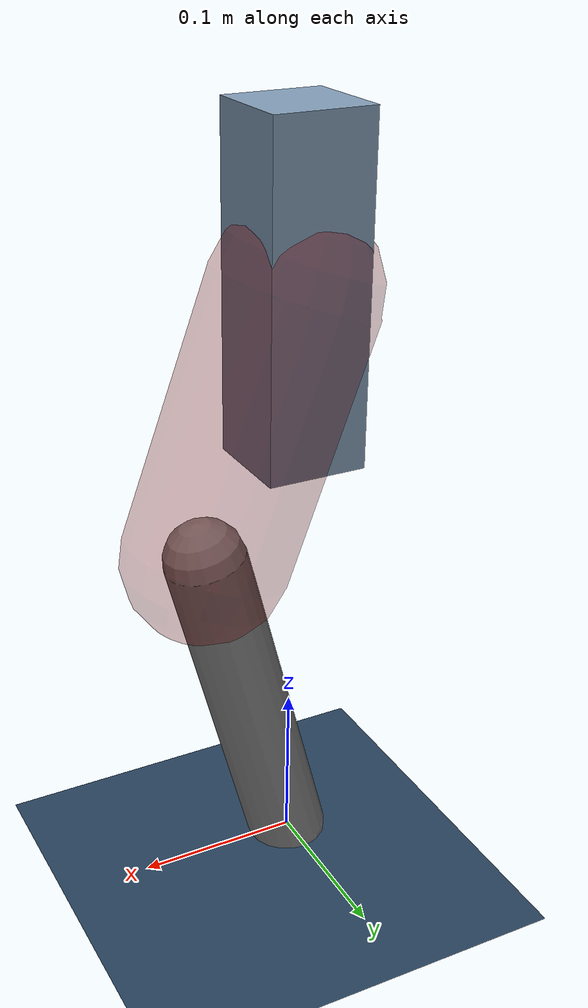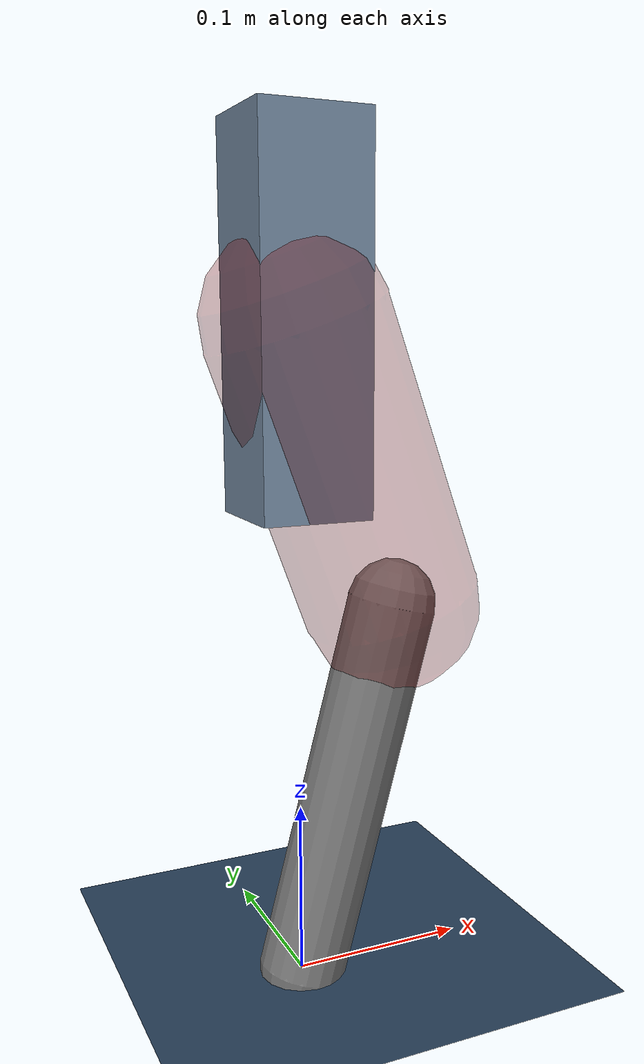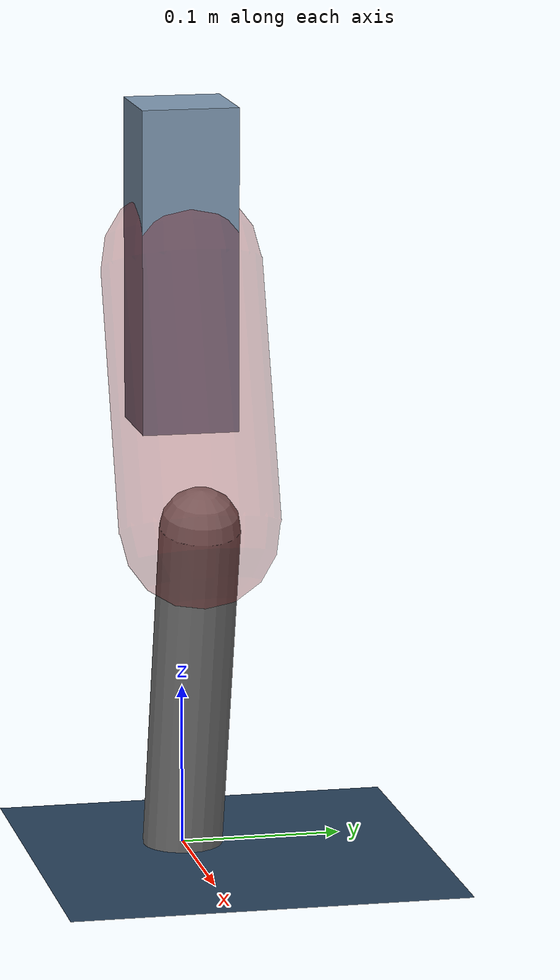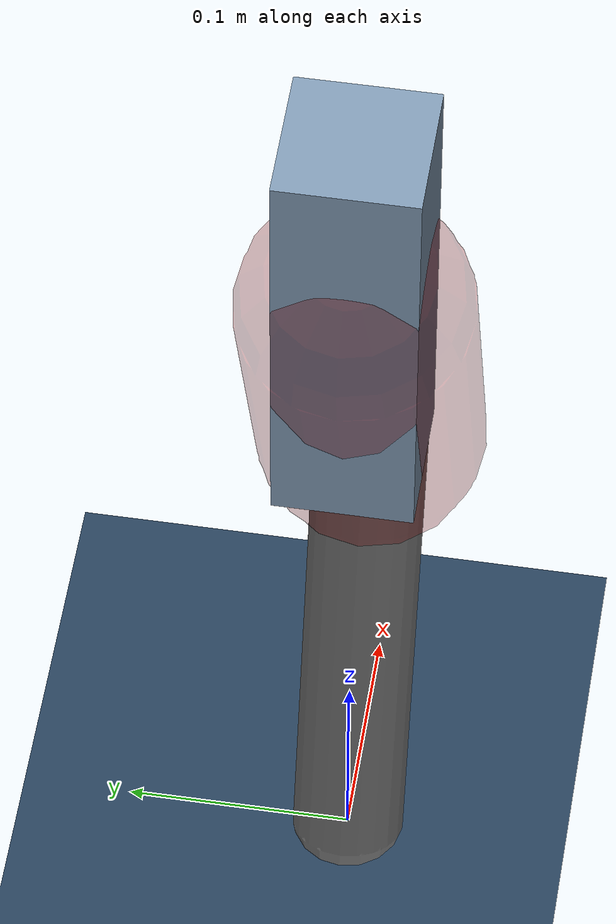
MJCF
<mujoco model="Hopper2D">
	<compiler inertiafromgeom="true" angle="radian" />
	<option timestep="0.001" integrator="implicit" cone="elliptic" solver="Newton" tolerance="1e-10" />

	<default>
		<geom contype="1" conaffinity="1" condim="3" friction="2 0.005 0.0001" solref="0.005 1" />
		<joint limited="true" damping="0.1" />
	</default>

	<asset>
		<texture name="skybox" type="skybox" builtin="gradient" rgb1=".4 .6 .8" rgb2="0 0 0" width="800" height="800" />
		<texture name="grid" type="2d" builtin="checker" rgb1=".1 .2 .3" rgb2=".2 .3 .4" width="300" height="300" mark="edge" markrgb=".2 .3 .4" />
		<material name="ground" texture="grid" texrepeat="1 1" texuniform="true" reflectance="0.1" />
		<material name="leg" rgba="0.5 0.6 0.7 1" />
	</asset>

	<worldbody>

		<geom name="floor" type="plane" size="5 5 0.25" material="ground" />

		<light directional="false" diffuse="0.8 0.8 0.8" specular="0.3 0.3 0.3" pos="0 0 2" dir="0 0 -1" />
		<light mode="targetbodycom" target="base" directional="false" diffuse="0.8 0.8 0.8" specular="0.3 0.3 0.3" pos="0 0 2" dir="0 0 -1" />

		<camera name="fixed" pos="0 -2 1" xyaxes="1 0 0 0 0 1" />
		<camera name="tracking" mode="trackcom" pos="0 -3 1" />

		<body name="root" pos="0 0 0.36673717474872136">
			<joint name="slide_x" type="slide" axis="1 0 0" range="-100 100" />
			<joint name="slide_z" type="slide" axis="0 0 1" range="0 10" />

			<body name="base" pos="0 0 0">
				<geom name="torso" type="box" size="0.03 0.03 0.1" mass="2.601" material="leg" />

				<body name="link1" pos="0 0 0" euler="0 1.2163050710838264 0">
					<joint type="hinge" axis="0 -1 0" pos="0 0 0" name="hinge1" limited="true" range="-3.14 3.14" stiffness="0" damping="0.1" />
					<geom name="thigh" type="capsule" fromto="0 0 0 0.16287830869622763 0 0" size="0.05" rgba="0.5 0 0 0.3" mass="0.6392079408709462" />

					<body name="link2" pos="0.16287830869622763 0 0" euler="0 0.6127984816391024 0">
						<joint type="hinge" axis="0 -1 0" pos="0 0 0" name="hinge2" limited="true" range="-3.14 3.14" stiffness="0" damping="0.1" />
						<geom name="shank" type="capsule" fromto="0 0 0 0.221328978242515 0 0" size="0.025" mass="0.41876318259401196" />

					</body>
				</body>
			</body>
		</body>
	</worldbody>

	<actuator>
		<motor name="torque1" joint="hinge1" ctrlrange="-84.20669288544966 84.20669288544966" ctrllimited="true" gear="1" />
		<motor name="torque2" joint="hinge2" ctrlrange="-91.49199998747912 91.49199998747912" ctrllimited="true" gear="1" />
	</actuator>
</mujoco>
